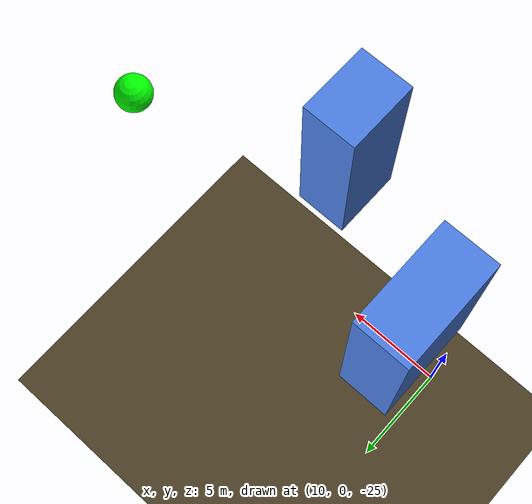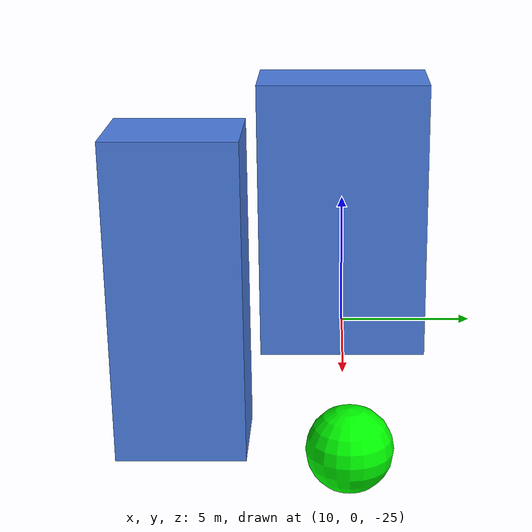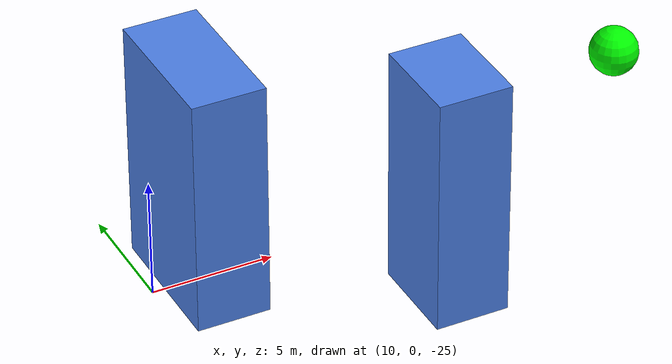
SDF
<?xml version="1.0" ?>
<!-- World B: Single obstacle directly ahead of spawn for trajectory testing -->
<sdf version="1.10">
  <world name="oceans_waves">
    <plugin filename="gz-sim-physics-system"
            name="gz::sim::systems::Physics"/>
    <plugin filename="gz-sim-user-commands-system"
            name="gz::sim::systems::UserCommands"/>
    <plugin filename="gz-sim-scene-broadcaster-system"
            name="gz::sim::systems::SceneBroadcaster"/>
    <plugin filename="gz-sim-sensors-system"
            name="gz::sim::systems::Sensors">
      <render_engine>ogre2</render_engine>
    </plugin>
    <!-- VelocityControl for rexrov2 model -->
    <plugin filename="gz-sim-velocity-control-system"
            name="gz::sim::systems::VelocityControl">
      <topic>/rexrov2/cmd_vel</topic>
    </plugin>

    <physics name="default_physics" default="true" type="ode">
      <max_step_size>0.002</max_step_size>
      <real_time_factor>1</real_time_factor>
      <real_time_update_rate>500</real_time_update_rate>
    </physics>

    <scene>
      <ambient>0.2 0.3 0.4 1.0</ambient>
      <background>0.01 0.04 0.08 1.0</background>
      <shadows>1</shadows>
    </scene>

    <spherical_coordinates>
      <latitude_deg>56.71897669633431</latitude_deg>
      <longitude_deg>3.515625</longitude_deg>
      <heading_deg>0</heading_deg>
    </spherical_coordinates>

    <!-- Lighting -->
    <light type="directional" name="sun">
      <cast_shadows>true</cast_shadows>
      <pose>0 0 100 0 0 0</pose>
      <diffuse>0.6 0.6 0.6 1</diffuse>
      <specular>0.2 0.2 0.2 1</specular>
      <direction>0.3 0.3 -0.9</direction>
    </light>

    <!-- Seabed -->
    <model name="seabed">
      <static>true</static>
      <pose>0 0 -70 0 0 0</pose>
      <link name="link">
        <visual name="visual">
          <geometry>
            <box><size>200 200 1</size></box>
          </geometry>
          <material>
            <ambient>0.3 0.25 0.15 1</ambient>
          </material>
        </visual>
        <collision name="collision">
          <geometry>
            <box><size>200 200 1</size></box>
          </geometry>
        </collision>
      </link>
    </model>

    <!-- OBSTACLE 1: Single large block directly ahead of spawn point -->
    <!-- Spawn is at (0, 0, -20) facing +X, obstacle at (12, 0, -20) -->
    <model name="obstacle_1">
      <static>true</static>
      <pose>12 0 -20 0 0 0</pose>
      <link name="link">
        <visual name="visual">
          <geometry>
            <box><size>3 6 10</size></box>
          </geometry>
          <material>
            <ambient>0.2 0.4 0.8 1</ambient>
            <diffuse>0.3 0.5 0.9 1</diffuse>
          </material>
        </visual>
        <collision name="collision">
          <geometry>
            <box><size>3 6 10</size></box>
          </geometry>
        </collision>
      </link>
    </model>

    <!-- OBSTACLE 2: Second block offset to create a gap -->
    <!-- Gap between obstacle_1 and obstacle_2 is ~4m wide (passable) -->
    <model name="obstacle_2">
      <static>true</static>
      <pose>20 -5 -20 0 0 0</pose>
      <link name="link">
        <visual name="visual">
          <geometry>
            <box><size>3 4 10</size></box>
          </geometry>
          <material>
            <ambient>0.2 0.4 0.8 1</ambient>
            <diffuse>0.3 0.5 0.9 1</diffuse>
          </material>
        </visual>
        <collision name="collision">
          <geometry>
            <box><size>3 4 10</size></box>
          </geometry>
        </collision>
      </link>
    </model>

    <!-- Goal marker (visual only) -->
    <model name="goal_marker">
      <static>true</static>
      <pose>30 0 -20 0 0 0</pose>
      <link name="link">
        <visual name="visual">
          <geometry>
            <sphere><radius>1.0</radius></sphere>
          </geometry>
          <material>
            <ambient>0 1 0 1</ambient>
            <diffuse>0 1 0 1</diffuse>
          </material>
        </visual>
      </link>
    </model>

    <!-- GUI -->
    <gui fullscreen="0">
      <plugin filename="GzScene3D" name="3D View">
        <gz-gui>
          <title>3D View</title>
          <property type="bool" key="showTitleBar">false</property>
        </gz-gui>
        <engine>ogre2</engine>
        <scene>scene</scene>
        <camera_pose>-5 -15 -10 0 0.3 1.2</camera_pose>
      </plugin>
      <plugin filename="WorldControl" name="World control">
        <gz-gui>
          <title>World control</title>
          <property type="bool" key="showTitleBar">false</property>
        </gz-gui>
        <play_pause>true</play_pause>
        <step>true</step>
        <start_paused>false</start_paused>
      </plugin>
    </gui>

  </world>
</sdf>
